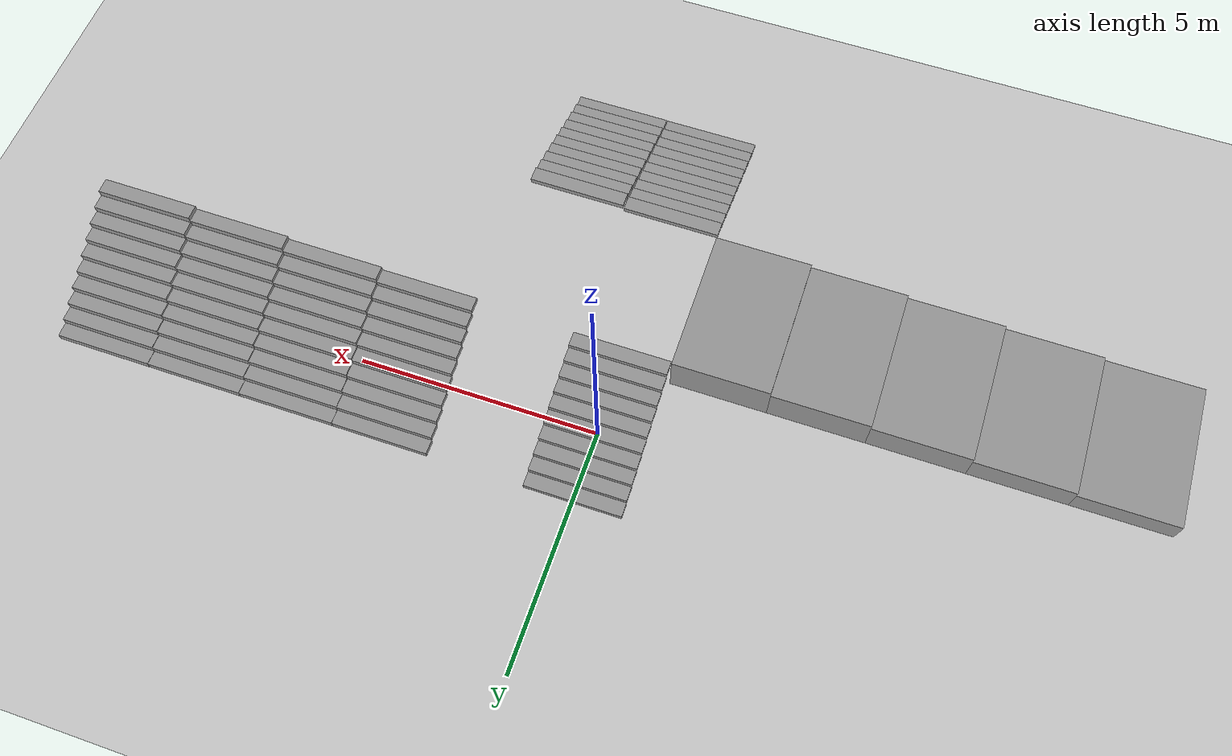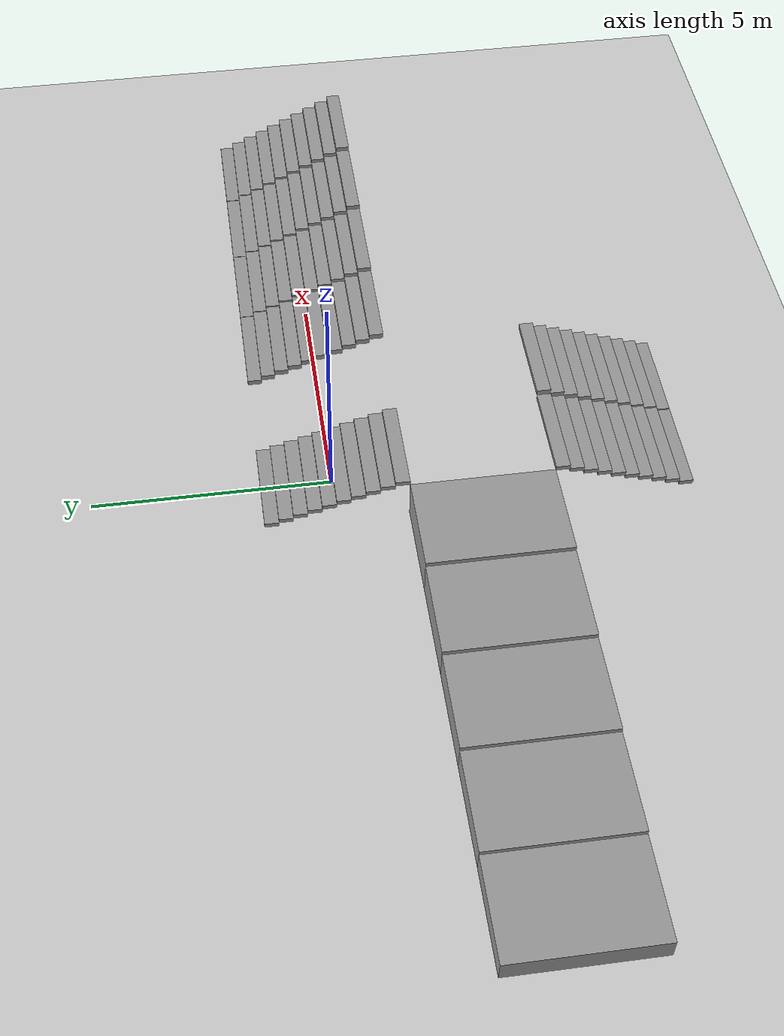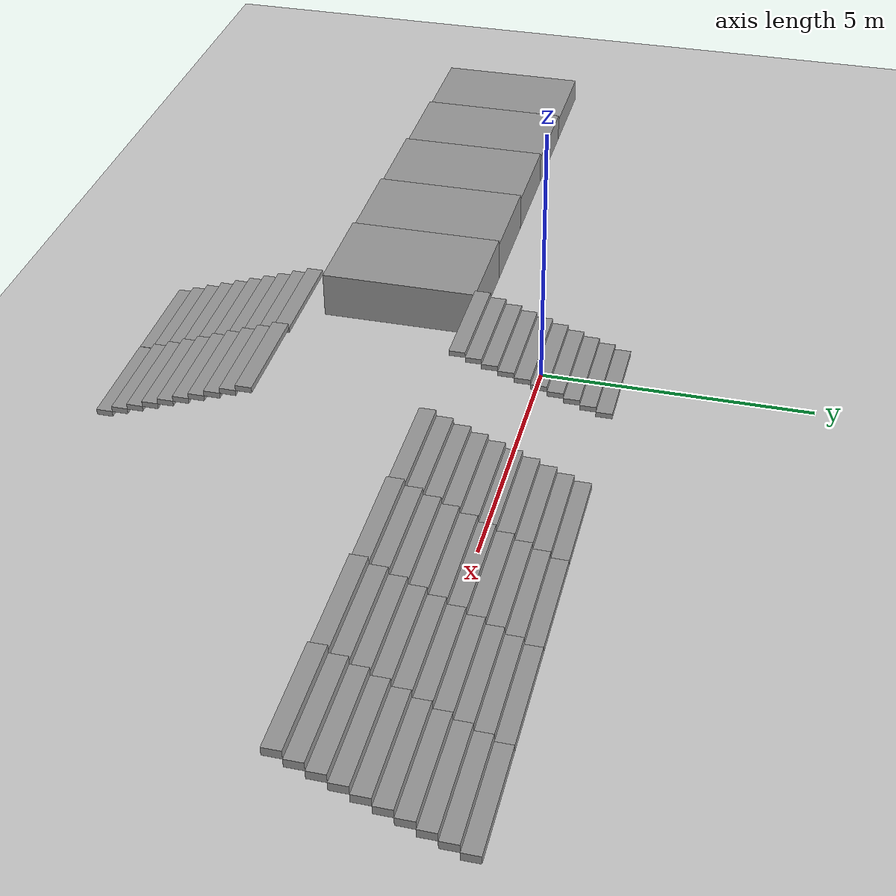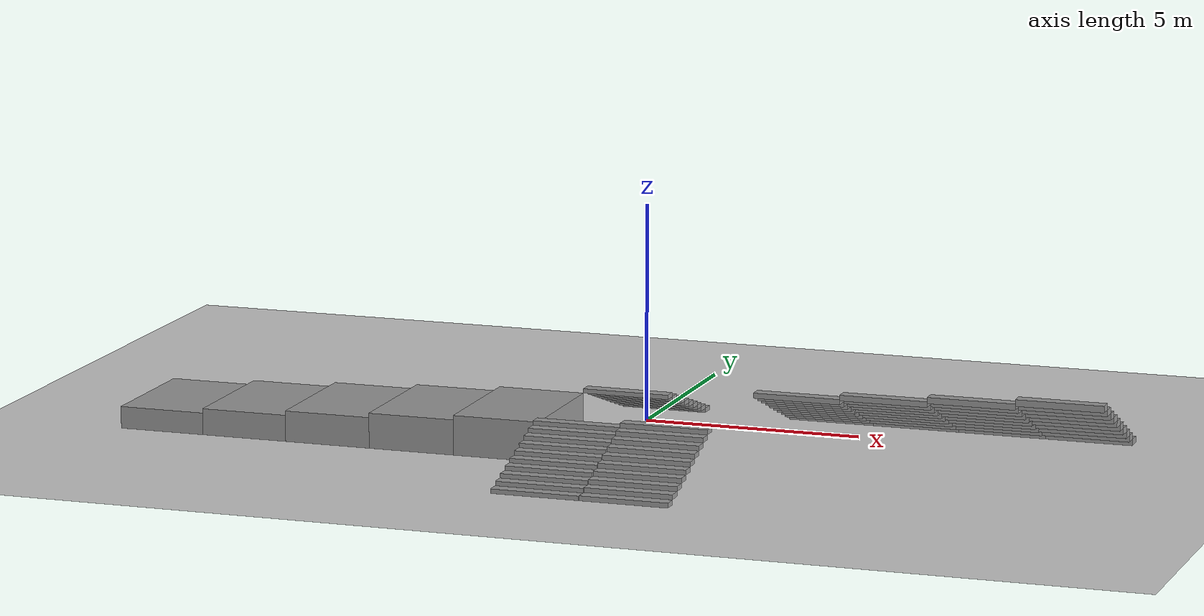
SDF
<sdf version="1.6">
 <world name="default">
  <model name="ground_plane">
   <static>1</static>
   <link name="link">
    <collision name="collision">
     <geometry><plane><normal>0 0 1</normal><size>100 100</size></plane></geometry>
     <surface>
      <contact><collide_bitmask>65535</collide_bitmask></contact>
      <friction><ode><mu>100</mu><mu2>50</mu2></ode></friction>
     </surface>
    </collision>
    <visual name="visual">
     <cast_shadows>0</cast_shadows>
     <geometry><plane><normal>0 0 1</normal><size>100 100</size></plane></geometry>
     <material>
      <script><uri>file://media/materials/scripts/gazebo.material</uri><name>Gazebo/Grey</name></script>
     </material>
    </visual>
   </link>
  </model>
  <model name="StairsWorld3">
   <pose>0 -3 0 0 -0 0</pose>
   <link name="Stairs_1">
    <visual name="Stairs_1_Visual_0">
     <pose>0 4.35 0.05 0 -0 0</pose>
     <geometry><box><size>2 0.3 0.1</size></box></geometry>
     <material>
      <script><uri>file://media/materials/scripts/gazebo.material</uri><name>Gazebo/Grey</name></script>
      <ambient>1 1 1 1</ambient>
     </material>
     <meta><layer>0</layer></meta>
    </visual>
    <collision name="Stairs_1_Collision_0">
     <geometry><box><size>2 0.3 0.1</size></box></geometry>
     <pose>0 4.35 0.05 0 -0 0</pose>
    </collision>
    <visual name="Stairs_1_Visual_1">
     <pose>0 4.05 0.15 0 -0 0</pose>
     <geometry><box><size>2 0.3 0.1</size></box></geometry>
     <material>
      <script><uri>file://media/materials/scripts/gazebo.material</uri><name>Gazebo/Grey</name></script>
      <ambient>1 1 1 1</ambient>
     </material>
     <meta><layer>0</layer></meta>
    </visual>
    <collision name="Stairs_1_Collision_1">
     <geometry><box><size>2 0.3 0.1</size></box></geometry>
     <pose>0 4.05 0.15 0 -0 0</pose>
    </collision>
    <visual name="Stairs_1_Visual_2">
     <pose>0 3.75 0.25 0 -0 0</pose>
     <geometry><box><size>2 0.3 0.1</size></box></geometry>
     <material>
      <script><uri>file://media/materials/scripts/gazebo.material</uri><name>Gazebo/Grey</name></script>
      <ambient>1 1 1 1</ambient>
     </material>
     <meta><layer>0</layer></meta>
    </visual>
    <collision name="Stairs_1_Collision_2">
     <geometry><box><size>2 0.3 0.1</size></box></geometry>
     <pose>0 3.75 0.25 0 -0 0</pose>
    </collision>
    <visual name="Stairs_1_Visual_3">
     <pose>0 3.45 0.35 0 -0 0</pose>
     <geometry><box><size>2 0.3 0.1</size></box></geometry>
     <material>
      <script><uri>file://media/materials/scripts/gazebo.material</uri><name>Gazebo/Grey</name></script>
      <ambient>1 1 1 1</ambient>
     </material>
     <meta><layer>0</layer></meta>
    </visual>
    <collision name="Stairs_1_Collision_3">
     <geometry><box><size>2 0.3 0.1</size></box></geometry>
     <pose>0 3.45 0.35 0 -0 0</pose>
    </collision>
    <visual name="Stairs_1_Visual_4">
     <pose>0 3.15 0.45 0 -0 0</pose>
     <geometry><box><size>2 0.3 0.1</size></box></geometry>
     <material>
      <script><uri>file://media/materials/scripts/gazebo.material</uri><name>Gazebo/Grey</name></script>
      <ambient>1 1 1 1</ambient>
     </material>
     <meta><layer>0</layer></meta>
    </visual>
    <collision name="Stairs_1_Collision_4">
     <geometry><box><size>2 0.3 0.1</size></box></geometry>
     <pose>0 3.15 0.45 0 -0 0</pose>
    </collision>
    <visual name="Stairs_1_Visual_5">
     <pose>0 2.85 0.55 0 -0 0</pose>
     <geometry><box><size>2 0.3 0.1</size></box></geometry>
     <material>
      <script><uri>file://media/materials/scripts/gazebo.material</uri><name>Gazebo/Grey</name></script>
      <ambient>1 1 1 1</ambient>
     </material>
     <meta><layer>0</layer></meta>
    </visual>
    <collision name="Stairs_1_Collision_5">
     <geometry><box><size>2 0.3 0.1</size></box></geometry>
     <pose>0 2.85 0.55 0 -0 0</pose>
    </collision>
    <visual name="Stairs_1_Visual_6">
     <pose>0 2.55 0.65 0 -0 0</pose>
     <geometry><box><size>2 0.3 0.1</size></box></geometry>
     <material>
      <script><uri>file://media/materials/scripts/gazebo.material</uri><name>Gazebo/Grey</name></script>
      <ambient>1 1 1 1</ambient>
     </material>
     <meta><layer>0</layer></meta>
    </visual>
    <collision name="Stairs_1_Collision_6">
     <geometry><box><size>2 0.3 0.1</size></box></geometry>
     <pose>0 2.55 0.65 0 -0 0</pose>
    </collision>
    <visual name="Stairs_1_Visual_7">
     <pose>0 2.25 0.75 0 -0 0</pose>
     <geometry><box><size>2 0.3 0.1</size></box></geometry>
     <material>
      <script><uri>file://media/materials/scripts/gazebo.material</uri><name>Gazebo/Grey</name></script>
      <ambient>1 1 1 1</ambient>
     </material>
     <meta><layer>0</layer></meta>
    </visual>
    <collision name="Stairs_1_Collision_7">
     <geometry><box><size>2 0.3 0.1</size></box></geometry>
     <pose>0 2.25 0.75 0 -0 0</pose>
    </collision>
    <visual name="Stairs_1_Visual_8">
     <pose>0 1.95 0.85 0 -0 0</pose>
     <geometry><box><size>2 0.3 0.1</size></box></geometry>
     <material>
      <script><uri>file://media/materials/scripts/gazebo.material</uri><name>Gazebo/Grey</name></script>
      <ambient>1 1 1 1</ambient>
     </material>
     <meta><layer>0</layer></meta>
    </visual>
    <collision name="Stairs_1_Collision_8">
     <geometry><box><size>2 0.3 0.1</size></box></geometry>
     <pose>0 1.95 0.85 0 -0 0</pose>
    </collision>
    <visual name="Stairs_1_Visual_9">
     <pose>0 1.65 0.95 0 -0 0</pose>
     <geometry><box><size>2 0.3 0.1</size></box></geometry>
     <material>
      <script><uri>file://media/materials/scripts/gazebo.material</uri><name>Gazebo/Grey</name></script>
      <ambient>1 1 1 1</ambient>
     </material>
     <meta><layer>0</layer></meta>
    </visual>
    <collision name="Stairs_1_Collision_9">
     <geometry><box><size>2 0.3 0.1</size></box></geometry>
     <pose>0 1.65 0.95 0 -0 0</pose>
    </collision>
   </link>
   <link name="Stairs_10">
    <visual name="Stairs_10_Visual_0">
     <pose>4 4.35 0.06 0 -0 0</pose>
     <geometry><box><size>2 0.3 0.12</size></box></geometry>
     <material>
      <script><uri>file://media/materials/scripts/gazebo.material</uri><name>Gazebo/Grey</name></script>
      <ambient>1 1 1 1</ambient>
     </material>
     <meta><layer>0</layer></meta>
    </visual>
    <collision name="Stairs_10_Collision_0">
     <geometry><box><size>2 0.3 0.12</size></box></geometry>
     <pose>4 4.35 0.06 0 -0 0</pose>
    </collision>
    <visual name="Stairs_10_Visual_1">
     <pose>4 4.05 0.18 0 -0 0</pose>
     <geometry><box><size>2 0.3 0.12</size></box></geometry>
     <material>
      <script><uri>file://media/materials/scripts/gazebo.material</uri><name>Gazebo/Grey</name></script>
      <ambient>1 1 1 1</ambient>
     </material>
     <meta><layer>0</layer></meta>
    </visual>
    <collision name="Stairs_10_Collision_1">
     <geometry><box><size>2 0.3 0.12</size></box></geometry>
     <pose>4 4.05 0.18 0 -0 0</pose>
    </collision>
    <visual name="Stairs_10_Visual_2">
     <pose>4 3.75 0.3 0 -0 0</pose>
     <geometry><box><size>2 0.3 0.12</size></box></geometry>
     <material>
      <script><uri>file://media/materials/scripts/gazebo.material</uri><name>Gazebo/Grey</name></script>
      <ambient>1 1 1 1</ambient>
     </material>
     <meta><layer>0</layer></meta>
    </visual>
    <collision name="Stairs_10_Collision_2">
     <geometry><box><size>2 0.3 0.12</size></box></geometry>
     <pose>4 3.75 0.3 0 -0 0</pose>
    </collision>
    <visual name="Stairs_10_Visual_3">
     <pose>4 3.45 0.42 0 -0 0</pose>
     <geometry><box><size>2 0.3 0.12</size></box></geometry>
     <material>
      <script><uri>file://media/materials/scripts/gazebo.material</uri><name>Gazebo/Grey</name></script>
      <ambient>1 1 1 1</ambient>
     </material>
     <meta><layer>0</layer></meta>
    </visual>
    <collision name="Stairs_10_Collision_3">
     <geometry><box><size>2 0.3 0.12</size></box></geometry>
     <pose>4 3.45 0.42 0 -0 0</pose>
    </collision>
    <visual name="Stairs_10_Visual_4">
     <pose>4 3.15 0.54 0 -0 0</pose>
     <geometry><box><size>2 0.3 0.12</size></box></geometry>
     <material>
      <script><uri>file://media/materials/scripts/gazebo.material</uri><name>Gazebo/Grey</name></script>
      <ambient>1 1 1 1</ambient>
     </material>
     <meta><layer>0</layer></meta>
    </visual>
    <collision name="Stairs_10_Collision_4">
     <geometry><box><size>2 0.3 0.12</size></box></geometry>
     <pose>4 3.15 0.54 0 -0 0</pose>
    </collision>
    <visual name="Stairs_10_Visual_5">
     <pose>4 2.85 0.66 0 -0 0</pose>
     <geometry><box><size>2 0.3 0.12</size></box></geometry>
     <material>
      <script><uri>file://media/materials/scripts/gazebo.material</uri><name>Gazebo/Grey</name></script>
      <ambient>1 1 1 1</ambient>
     </material>
     <meta><layer>0</layer></meta>
    </visual>
    <collision name="Stairs_10_Collision_5">
     <geometry><box><size>2 0.3 0.12</size></box></geometry>
     <pose>4 2.85 0.66 0 -0 0</pose>
    </collision>
    <visual name="Stairs_10_Visual_6">
     <pose>4 2.55 0.78 0 -0 0</pose>
     <geometry><box><size>2 0.3 0.12</size></box></geometry>
     <material>
      <script><uri>file://media/materials/scripts/gazebo.material</uri><name>Gazebo/Grey</name></script>
      <ambient>1 1 1 1</ambient>
     </material>
     <meta><layer>0</layer></meta>
    </visual>
    <collision name="Stairs_10_Collision_6">
     <geometry><box><size>2 0.3 0.12</size></box></geometry>
     <pose>4 2.55 0.78 0 -0 0</pose>
    </collision>
    <visual name="Stairs_10_Visual_7">
     <pose>4 2.25 0.9 0 -0 0</pose>
     <geometry><box><size>2 0.3 0.12</size></box></geometry>
     <material>
      <script><uri>file://media/materials/scripts/gazebo.material</uri><name>Gazebo/Grey</name></script>
      <ambient>1 1 1 1</ambient>
     </material>
     <meta><layer>0</layer></meta>
    </visual>
    <collision name="Stairs_10_Collision_7">
     <geometry><box><size>2 0.3 0.12</size></box></geometry>
     <pose>4 2.25 0.9 0 -0 0</pose>
    </collision>
    <visual name="Stairs_10_Visual_8">
     <pose>4 1.95 1.02 0 -0 0</pose>
     <geometry><box><size>2 0.3 0.12</size></box></geometry>
     <material>
      <script><uri>file://media/materials/scripts/gazebo.material</uri><name>Gazebo/Grey</name></script>
      <ambient>1 1 1 1</ambient>
     </material>
     <meta><layer>0</layer></meta>
    </visual>
    <collision name="Stairs_10_Collision_8">
     <geometry><box><size>2 0.3 0.12</size></box></geometry>
     <pose>4 1.95 1.02 0 -0 0</pose>
    </collision>
    <visual name="Stairs_10_Visual_9">
     <pose>4 1.65 1.14 0 -0 0</pose>
     <geometry><box><size>2 0.3 0.12</size></box></geometry>
     <material>
      <script><uri>file://media/materials/scripts/gazebo.material</uri><name>Gazebo/Grey</name></script>
      <ambient>1 1 1 1</ambient>
     </material>
     <meta><layer>0</layer></meta>
    </visual>
    <collision name="Stairs_10_Collision_9">
     <geometry><box><size>2 0.3 0.12</size></box></geometry>
     <pose>4 1.65 1.14 0 -0 0</pose>
    </collision>
   </link>
   <link name="Stairs_11">
    <visual name="Stairs_11_Visual_0">
     <pose>6 4.35 0.065 0 -0 0</pose>
     <geometry><box><size>2 0.3 0.13</size></box></geometry>
     <material>
      <script><uri>file://media/materials/scripts/gazebo.material</uri><name>Gazebo/Grey</name></script>
      <ambient>1 1 1 1</ambient>
     </material>
     <meta><layer>0</layer></meta>
    </visual>
    <collision name="Stairs_11_Collision_0">
     <geometry><box><size>2 0.3 0.13</size></box></geometry>
     <pose>6 4.35 0.065 0 -0 0</pose>
    </collision>
    <visual name="Stairs_11_Visual_1">
     <pose>6 4.05 0.195 0 -0 0</pose>
     <geometry><box><size>2 0.3 0.13</size></box></geometry>
     <material>
      <script><uri>file://media/materials/scripts/gazebo.material</uri><name>Gazebo/Grey</name></script>
      <ambient>1 1 1 1</ambient>
     </material>
     <meta><layer>0</layer></meta>
    </visual>
    <collision name="Stairs_11_Collision_1">
     <geometry><box><size>2 0.3 0.13</size></box></geometry>
     <pose>6 4.05 0.195 0 -0 0</pose>
    </collision>
    <visual name="Stairs_11_Visual_2">
     <pose>6 3.75 0.325 0 -0 0</pose>
     <geometry><box><size>2 0.3 0.13</size></box></geometry>
     <material>
      <script><uri>file://media/materials/scripts/gazebo.material</uri><name>Gazebo/Grey</name></script>
      <ambient>1 1 1 1</ambient>
     </material>
     <meta><layer>0</layer></meta>
    </visual>
    <collision name="Stairs_11_Collision_2">
     <geometry><box><size>2 0.3 0.13</size></box></geometry>
     <pose>6 3.75 0.325 0 -0 0</pose>
    </collision>
    <visual name="Stairs_11_Visual_3">
     <pose>6 3.45 0.455 0 -0 0</pose>
     <geometry><box><size>2 0.3 0.13</size></box></geometry>
     <material>
      <script><uri>file://media/materials/scripts/gazebo.material</uri><name>Gazebo/Grey</name></script>
      <ambient>1 1 1 1</ambient>
     </material>
     <meta><layer>0</layer></meta>
    </visual>
    <collision name="Stairs_11_Collision_3">
     <geometry><box><size>2 0.3 0.13</size></box></geometry>
     <pose>6 3.45 0.455 0 -0 0</pose>
    </collision>
    <visual name="Stairs_11_Visual_4">
     <pose>6 3.15 0.585 0 -0 0</pose>
     <geometry><box><size>2 0.3 0.13</size></box></geometry>
     <material>
      <script><uri>file://media/materials/scripts/gazebo.material</uri><name>Gazebo/Grey</name></script>
      <ambient>1 1 1 1</ambient>
     </material>
     <meta><layer>0</layer></meta>
    </visual>
    <collision name="Stairs_11_Collision_4">
     <geometry><box><size>2 0.3 0.13</size></box></geometry>
     <pose>6 3.15 0.585 0 -0 0</pose>
    </collision>
    <visual name="Stairs_11_Visual_5">
     <pose>6 2.85 0.715 0 -0 0</pose>
     <geometry><box><size>2 0.3 0.13</size></box></geometry>
     <material>
      <script><uri>file://media/materials/scripts/gazebo.material</uri><name>Gazebo/Grey</name></script>
      <ambient>1 1 1 1</ambient>
     </material>
     <meta><layer>0</layer></meta>
    </visual>
    <collision name="Stairs_11_Collision_5">
     <geometry><box><size>2 0.3 0.13</size></box></geometry>
     <pose>6 2.85 0.715 0 -0 0</pose>
    </collision>
    <visual name="Stairs_11_Visual_6">
     <pose>6 2.55 0.845 0 -0 0</pose>
     <geometry><box><size>2 0.3 0.13</size></box></geometry>
     <material>
      <script><uri>file://media/materials/scripts/gazebo.material</uri><name>Gazebo/Grey</name></script>
      <ambient>1 1 1 1</ambient>
     </material>
     <meta><layer>0</layer></meta>
    </visual>
    <collision name="Stairs_11_Collision_6">
     <geometry><box><size>2 0.3 0.13</size></box></geometry>
     <pose>6 2.55 0.845 0 -0 0</pose>
    </collision>
    <visual name="Stairs_11_Visual_7">
     <pose>6 2.25 0.975 0 -0 0</pose>
     <geometry><box><size>2 0.3 0.13</size></box></geometry>
     <material>
      <script><uri>file://media/materials/scripts/gazebo.material</uri><name>Gazebo/Grey</name></script>
      <ambient>1 1 1 1</ambient>
     </material>
     <meta><layer>0</layer></meta>
    </visual>
    <collision name="Stairs_11_Collision_7">
     <geometry><box><size>2 0.3 0.13</size></box></geometry>
     <pose>6 2.25 0.975 0 -0 0</pose>
    </collision>
    <visual name="Stairs_11_Visual_8">
     <pose>6 1.95 1.105 0 -0 0</pose>
     <geometry><box><size>2 0.3 0.13</size></box></geometry>
     <material>
      <script><uri>file://media/materials/scripts/gazebo.material</uri><name>Gazebo/Grey</name></script>
      <ambient>1 1 1 1</ambient>
     </material>
     <meta><layer>0</layer></meta>
    </visual>
    <collision name="Stairs_11_Collision_8">
     <geometry><box><size>2 0.3 0.13</size></box></geometry>
     <pose>6 1.95 1.105 0 -0 0</pose>
    </collision>
    <visual name="Stairs_11_Visual_9">
     <pose>6 1.65 1.235 0 -0 0</pose>
     <geometry><box><size>2 0.3 0.13</size></box></geometry>
     <material>
      <script><uri>file://media/materials/scripts/gazebo.material</uri><name>Gazebo/Grey</name></script>
      <ambient>1 1 1 1</ambient>
     </material>
     <meta><layer>0</layer></meta>
    </visual>
    <collision name="Stairs_11_Collision_9">
     <geometry><box><size>2 0.3 0.13</size></box></geometry>
     <pose>6 1.65 1.235 0 -0 0</pose>
    </collision>
   </link>
   <link name="Stairs_12">
    <visual name="Stairs_12_Visual_0">
     <pose>8 4.35 0.07 0 -0 0</pose>
     <geometry><box><size>2 0.3 0.14</size></box></geometry>
     <material>
      <script><uri>file://media/materials/scripts/gazebo.material</uri><name>Gazebo/Grey</name></script>
      <ambient>1 1 1 1</ambient>
     </material>
     <meta><layer>0</layer></meta>
    </visual>
    <collision name="Stairs_12_Collision_0">
     <geometry><box><size>2 0.3 0.14</size></box></geometry>
     <pose>8 4.35 0.07 0 -0 0</pose>
    </collision>
    <visual name="Stairs_12_Visual_1">
     <pose>8 4.05 0.21 0 -0 0</pose>
     <geometry><box><size>2 0.3 0.14</size></box></geometry>
     <material>
      <script><uri>file://media/materials/scripts/gazebo.material</uri><name>Gazebo/Grey</name></script>
      <ambient>1 1 1 1</ambient>
     </material>
     <meta><layer>0</layer></meta>
    </visual>
    <collision name="Stairs_12_Collision_1">
     <geometry><box><size>2 0.3 0.14</size></box></geometry>
     <pose>8 4.05 0.21 0 -0 0</pose>
    </collision>
    <visual name="Stairs_12_Visual_2">
     <pose>8 3.75 0.35 0 -0 0</pose>
     <geometry><box><size>2 0.3 0.14</size></box></geometry>
     <material>
      <script><uri>file://media/materials/scripts/gazebo.material</uri><name>Gazebo/Grey</name></script>
      <ambient>1 1 1 1</ambient>
     </material>
     <meta><layer>0</layer></meta>
    </visual>
    <collision name="Stairs_12_Collision_2">
     <geometry><box><size>2 0.3 0.14</size></box></geometry>
     <pose>8 3.75 0.35 0 -0 0</pose>
    </collision>
    <visual name="Stairs_12_Visual_3">
     <pose>8 3.45 0.49 0 -0 0</pose>
     <geometry><box><size>2 0.3 0.14</size></box></geometry>
     <material>
      <script><uri>file://media/materials/scripts/gazebo.material</uri><name>Gazebo/Grey</name></script>
      <ambient>1 1 1 1</ambient>
     </material>
     <meta><layer>0</layer></meta>
    </visual>
    <collision name="Stairs_12_Collision_3">
     <geometry><box><size>2 0.3 0.14</size></box></geometry>
     <pose>8 3.45 0.49 0 -0 0</pose>
    </collision>
    <visual name="Stairs_12_Visual_4">
     <pose>8 3.15 0.63 0 -0 0</pose>
     <geometry><box><size>2 0.3 0.14</size></box></geometry>
     <material>
      <script><uri>file://media/materials/scripts/gazebo.material</uri><name>Gazebo/Grey</name></script>
      <ambient>1 1 1 1</ambient>
     </material>
     <meta><layer>0</layer></meta>
    </visual>
    <collision name="Stairs_12_Collision_4">
     <geometry><box><size>2 0.3 0.14</size></box></geometry>
     <pose>8 3.15 0.63 0 -0 0</pose>
    </collision>
    <visual name="Stairs_12_Visual_5">
     <pose>8 2.85 0.77 0 -0 0</pose>
     <geometry><box><size>2 0.3 0.14</size></box></geometry>
     <material>
      <script><uri>file://media/materials/scripts/gazebo.material</uri><name>Gazebo/Grey</name></script>
      <ambient>1 1 1 1</ambient>
     </material>
     <meta><layer>0</layer></meta>
    </visual>
    <collision name="Stairs_12_Collision_5">
     <geometry><box><size>2 0.3 0.14</size></box></geometry>
     <pose>8 2.85 0.77 0 -0 0</pose>
    </collision>
    <visual name="Stairs_12_Visual_6">
     <pose>8 2.55 0.91 0 -0 0</pose>
     <geometry><box><size>2 0.3 0.14</size></box></geometry>
     <material>
      <script><uri>file://media/materials/scripts/gazebo.material</uri><name>Gazebo/Grey</name></script>
      <ambient>1 1 1 1</ambient>
     </material>
     <meta><layer>0</layer></meta>
    </visual>
    <collision name="Stairs_12_Collision_6">
     <geometry><box><size>2 0.3 0.14</size></box></geometry>
     <pose>8 2.55 0.91 0 -0 0</pose>
    </collision>
    <visual name="Stairs_12_Visual_7">
     <pose>8 2.25 1.05 0 -0 0</pose>
     <geometry><box><size>2 0.3 0.14</size></box></geometry>
     <material>
      <script><uri>file://media/materials/scripts/gazebo.material</uri><name>Gazebo/Grey</name></script>
      <ambient>1 1 1 1</ambient>
     </material>
     <meta><layer>0</layer></meta>
    </visual>
    <collision name="Stairs_12_Collision_7">
     <geometry><box><size>2 0.3 0.14</size></box></geometry>
     <pose>8 2.25 1.05 0 -0 0</pose>
    </collision>
    <visual name="Stairs_12_Visual_8">
     <pose>8 1.95 1.19 0 -0 0</pose>
     <geometry><box><size>2 0.3 0.14</size></box></geometry>
     <material>
      <script><uri>file://media/materials/scripts/gazebo.material</uri><name>Gazebo/Grey</name></script>
      <ambient>1 1 1 1</ambient>
     </material>
     <meta><layer>0</layer></meta>
    </visual>
    <collision name="Stairs_12_Collision_8">
     <geometry><box><size>2 0.3 0.14</size></box></geometry>
     <pose>8 1.95 1.19 0 -0 0</pose>
    </collision>
    <visual name="Stairs_12_Visual_9">
     <pose>8 1.65 1.33 0 -0 0</pose>
     <geometry><box><size>2 0.3 0.14</size></box></geometry>
     <material>
      <script><uri>file://media/materials/scripts/gazebo.material</uri><name>Gazebo/Grey</name></script>
      <ambient>1 1 1 1</ambient>
     </material>
     <meta><layer>0</layer></meta>
    </visual>
    <collision name="Stairs_12_Collision_9">
     <geometry><box><size>2 0.3 0.14</size></box></geometry>
     <pose>8 1.65 1.33 0 -0 0</pose>
    </collision>
   </link>
   <link name="Stairs_13">
    <visual name="Stairs_13_Visual_0">
     <pose>10 4.35 0.075 0 -0 0</pose>
     <geometry><box><size>2 0.3 0.15</size></box></geometry>
     <material>
      <script><uri>file://media/materials/scripts/gazebo.material</uri><name>Gazebo/Grey</name></script>
      <ambient>1 1 1 1</ambient>
     </material>
     <meta><layer>0</layer></meta>
    </visual>
    <collision name="Stairs_13_Collision_0">
     <geometry><box><size>2 0.3 0.15</size></box></geometry>
     <pose>10 4.35 0.075 0 -0 0</pose>
    </collision>
    <visual name="Stairs_13_Visual_1">
     <pose>10 4.05 0.225 0 -0 0</pose>
     <geometry><box><size>2 0.3 0.15</size></box></geometry>
     <material>
      <script><uri>file://media/materials/scripts/gazebo.material</uri><name>Gazebo/Grey</name></script>
      <ambient>1 1 1 1</ambient>
     </material>
     <meta><layer>0</layer></meta>
    </visual>
    <collision name="Stairs_13_Collision_1">
     <geometry><box><size>2 0.3 0.15</size></box></geometry>
     <pose>10 4.05 0.225 0 -0 0</pose>
    </collision>
    <visual name="Stairs_13_Visual_2">
     <pose>10 3.75 0.375 0 -0 0</pose>
     <geometry><box><size>2 0.3 0.15</size></box></geometry>
     <material>
      <script><uri>file://media/materials/scripts/gazebo.material</uri><name>Gazebo/Grey</name></script>
      <ambient>1 1 1 1</ambient>
     </material>
     <meta><layer>0</layer></meta>
    </visual>
    <collision name="Stairs_13_Collision_2">
     <geometry><box><size>2 0.3 0.15</size></box></geometry>
     <pose>10 3.75 0.375 0 -0 0</pose>
    </collision>
    <visual name="Stairs_13_Visual_3">
     <pose>10 3.45 0.525 0 -0 0</pose>
     <geometry><box><size>2 0.3 0.15</size></box></geometry>
     <material>
      <script><uri>file://media/materials/scripts/gazebo.material</uri><name>Gazebo/Grey</name></script>
      <ambient>1 1 1 1</ambient>
     </material>
     <meta><layer>0</layer></meta>
    </visual>
    <collision name="Stairs_13_Collision_3">
     <geometry><box><size>2 0.3 0.15</size></box></geometry>
     <pose>10 3.45 0.525 0 -0 0</pose>
    </collision>
    <visual name="Stairs_13_Visual_4">
     <pose>10 3.15 0.675 0 -0 0</pose>
     <geometry><box><size>2 0.3 0.15</size></box></geometry>
     <material>
      <script><uri>file://media/materials/scripts/gazebo.material</uri><name>Gazebo/Grey</name></script>
      <ambient>1 1 1 1</ambient>
     </material>
     <meta><layer>0</layer></meta>
    </visual>
    <collision name="Stairs_13_Collision_4">
     <geometry><box><size>2 0.3 0.15</size></box></geometry>
     <pose>10 3.15 0.675 0 -0 0</pose>
    </collision>
    <visual name="Stairs_13_Visual_5">
     <pose>10 2.85 0.825 0 -0 0</pose>
     <geometry><box><size>2 0.3 0.15</size></box></geometry>
     <material>
      <script><uri>file://media/materials/scripts/gazebo.material</uri><name>Gazebo/Grey</name></script>
      <ambient>1 1 1 1</ambient>
     </material>
     <meta><layer>0</layer></meta>
    </visual>
    <collision name="Stairs_13_Collision_5">
     <geometry><box><size>2 0.3 0.15</size></box></geometry>
     <pose>10 2.85 0.825 0 -0 0</pose>
    </collision>
    <visual name="Stairs_13_Visual_6">
     <pose>10 2.55 0.975 0 -0 0</pose>
     <geometry><box><size>2 0.3 0.15</size></box></geometry>
     <material>
      <script><uri>file://media/materials/scripts/gazebo.material</uri><name>Gazebo/Grey</name></script>
      <ambient>1 1 1 1</ambient>
     </material>
     <meta><layer>0</layer></meta>
    </visual>
    <collision name="Stairs_13_Collision_6">
     <geometry><box><size>2 0.3 0.15</size></box></geometry>
     <pose>10 2.55 0.975 0 -0 0</pose>
    </collision>
    <visual name="Stairs_13_Visual_7">
     <pose>10 2.25 1.125 0 -0 0</pose>
     <geometry><box><size>2 0.3 0.15</size></box></geometry>
     <material>
      <script><uri>file://media/materials/scripts/gazebo.material</uri><name>Gazebo/Grey</name></script>
      <ambient>1 1 1 1</ambient>
     </material>
     <meta><layer>0</layer></meta>
    </visual>
    <collision name="Stairs_13_Collision_7">
     <geometry><box><size>2 0.3 0.15</size></box></geometry>
     <pose>10 2.25 1.125 0 -0 0</pose>
    </collision>
    <visual name="Stairs_13_Visual_8">
     <pose>10 1.95 1.275 0 -0 0</pose>
     <geometry><box><size>2 0.3 0.15</size></box></geometry>
     <material>
      <script><uri>file://media/materials/scripts/gazebo.material</uri><name>Gazebo/Grey</name></script>
      <ambient>1 1 1 1</ambient>
     </material>
     <meta><layer>0</layer></meta>
    </visual>
    <collision name="Stairs_13_Collision_8">
     <geometry><box><size>2 0.3 0.15</size></box></geometry>
     <pose>10 1.95 1.275 0 -0 0</pose>
    </collision>
    <visual name="Stairs_13_Visual_9">
     <pose>10 1.65 1.425 0 -0 0</pose>
     <geometry><box><size>2 0.3 0.15</size></box></geometry>
     <material>
      <script><uri>file://media/materials/scripts/gazebo.material</uri><name>Gazebo/Grey</name></script>
      <ambient>1 1 1 1</ambient>
     </material>
     <meta><layer>0</layer></meta>
    </visual>
    <collision name="Stairs_13_Collision_9">
     <geometry><box><size>2 0.3 0.15</size></box></geometry>
     <pose>10 1.65 1.425 0 -0 0</pose>
    </collision>
   </link>
   <link name="Stairs_18">
    <visual name="Stairs_18_Visual_0">
     <pose>-0.020114 -4.35 0.05 0 0 -3.14159</pose>
     <geometry><box><size>2 0.3 0.1</size></box></geometry>
     <material>
      <script><uri>file://media/materials/scripts/gazebo.material</uri><name>Gazebo/Grey</name></script>
      <ambient>1 1 1 1</ambient>
     </material>
     <meta><layer>0</layer></meta>
    </visual>
    <collision name="Stairs_18_Collision_0">
     <geometry><box><size>2 0.3 0.1</size></box></geometry>
     <pose>-0.020114 -4.35 0.05 0 0 -3.14159</pose>
    </collision>
    <visual name="Stairs_18_Visual_1">
     <pose>-0.020114 -4.05 0.15 0 0 -3.14159</pose>
     <geometry><box><size>2 0.3 0.1</size></box></geometry>
     <material>
      <script><uri>file://media/materials/scripts/gazebo.material</uri><name>Gazebo/Grey</name></script>
      <ambient>1 1 1 1</ambient>
     </material>
     <meta><layer>0</layer></meta>
    </visual>
    <collision name="Stairs_18_Collision_1">
     <geometry><box><size>2 0.3 0.1</size></box></geometry>
     <pose>-0.020114 -4.05 0.15 0 0 -3.14159</pose>
    </collision>
    <visual name="Stairs_18_Visual_2">
     <pose>-0.020114 -3.75 0.25 0 0 -3.14159</pose>
     <geometry><box><size>2 0.3 0.1</size></box></geometry>
     <material>
      <script><uri>file://media/materials/scripts/gazebo.material</uri><name>Gazebo/Grey</name></script>
      <ambient>1 1 1 1</ambient>
     </material>
     <meta><layer>0</layer></meta>
    </visual>
    <collision name="Stairs_18_Collision_2">
     <geometry><box><size>2 0.3 0.1</size></box></geometry>
     <pose>-0.020114 -3.75 0.25 0 0 -3.14159</pose>
    </collision>
    <visual name="Stairs_18_Visual_3">
     <pose>-0.020114 -3.45 0.35 0 0 -3.14159</pose>
     <geometry><box><size>2 0.3 0.1</size></box></geometry>
     <material>
      <script><uri>file://media/materials/scripts/gazebo.material</uri><name>Gazebo/Grey</name></script>
      <ambient>1 1 1 1</ambient>
     </material>
     <meta><layer>0</layer></meta>
    </visual>
    <collision name="Stairs_18_Collision_3">
     <geometry><box><size>2 0.3 0.1</size></box></geometry>
     <pose>-0.020114 -3.45 0.35 0 0 -3.14159</pose>
    </collision>
    <visual name="Stairs_18_Visual_4">
     <pose>-0.020114 -3.15 0.45 0 0 -3.14159</pose>
     <geometry><box><size>2 0.3 0.1</size></box></geometry>
     <material>
      <script><uri>file://media/materials/scripts/gazebo.material</uri><name>Gazebo/Grey</name></script>
      <ambient>1 1 1 1</ambient>
     </material>
     <meta><layer>0</layer></meta>
    </visual>
    <collision name="Stairs_18_Collision_4">
     <geometry><box><size>2 0.3 0.1</size></box></geometry>
     <pose>-0.020114 -3.15 0.45 0 0 -3.14159</pose>
    </collision>
    <visual name="Stairs_18_Visual_5">
     <pose>-0.020114 -2.85 0.55 0 0 -3.14159</pose>
     <geometry><box><size>2 0.3 0.1</size></box></geometry>
     <material>
      <script><uri>file://media/materials/scripts/gazebo.material</uri><name>Gazebo/Grey</name></script>
      <ambient>1 1 1 1</ambient>
     </material>
     <meta><layer>0</layer></meta>
    </visual>
    <collision name="Stairs_18_Collision_5">
     <geometry><box><size>2 0.3 0.1</size></box></geometry>
     <pose>-0.020114 -2.85 0.55 0 0 -3.14159</pose>
    </collision>
    <visual name="Stairs_18_Visual_6">
     <pose>-0.020114 -2.55 0.65 0 0 -3.14159</pose>
     <geometry><box><size>2 0.3 0.1</size></box></geometry>
     <material>
      <script><uri>file://media/materials/scripts/gazebo.material</uri><name>Gazebo/Grey</name></script>
      <ambient>1 1 1 1</ambient>
     </material>
     <meta><layer>0</layer></meta>
    </visual>
    <collision name="Stairs_18_Collision_6">
     <geometry><box><size>2 0.3 0.1</size></box></geometry>
     <pose>-0.020114 -2.55 0.65 0 0 -3.14159</pose>
    </collision>
    <visual name="Stairs_18_Visual_7">
     <pose>-0.020114 -2.25 0.75 0 0 -3.14159</pose>
     <geometry><box><size>2 0.3 0.1</size></box></geometry>
     <material>
      <script><uri>file://media/materials/scripts/gazebo.material</uri><name>Gazebo/Grey</name></script>
      <ambient>1 1 1 1</ambient>
     </material>
     <meta><layer>0</layer></meta>
    </visual>
    <collision name="Stairs_18_Collision_7">
     <geometry><box><size>2 0.3 0.1</size></box></geometry>
     <pose>-0.020114 -2.25 0.75 0 0 -3.14159</pose>
    </collision>
    <visual name="Stairs_18_Visual_8">
     <pose>-0.020114 -1.95 0.85 0 0 -3.14159</pose>
     <geometry><box><size>2 0.3 0.1</size></box></geometry>
     <material>
      <script><uri>file://media/materials/scripts/gazebo.material</uri><name>Gazebo/Grey</name></script>
      <ambient>1 1 1 1</ambient>
     </material>
     <meta><layer>0</layer></meta>
    </visual>
    <collision name="Stairs_18_Collision_8">
     <geometry><box><size>2 0.3 0.1</size></box></geometry>
     <pose>-0.020114 -1.95 0.85 0 0 -3.14159</pose>
    </collision>
    <visual name="Stairs_18_Visual_9">
     <pose>-0.020114 -1.65 0.95 0 0 -3.14159</pose>
     <geometry><box><size>2 0.3 0.1</size></box></geometry>
     <material>
      <script><uri>file://media/materials/scripts/gazebo.material</uri><name>Gazebo/Grey</name></script>
      <ambient>1 1 1 1</ambient>
     </material>
     <meta><layer>0</layer></meta>
    </visual>
    <collision name="Stairs_18_Collision_9">
     <geometry><box><size>2 0.3 0.1</size></box></geometry>
     <pose>-0.020114 -1.65 0.95 0 0 -3.14159</pose>
    </collision>
   </link>
   <link name="Stairs_19">
    <visual name="Stairs_19_Visual_0">
     <pose>2 -4.35 0.055 0 0 -3.14159</pose>
     <geometry><box><size>2 0.3 0.11</size></box></geometry>
     <material>
      <script><uri>file://media/materials/scripts/gazebo.material</uri><name>Gazebo/Grey</name></script>
      <ambient>1 1 1 1</ambient>
     </material>
     <meta><layer>0</layer></meta>
    </visual>
    <collision name="Stairs_19_Collision_0">
     <geometry><box><size>2 0.3 0.11</size></box></geometry>
     <pose>2 -4.35 0.055 0 0 -3.14159</pose>
    </collision>
    <visual name="Stairs_19_Visual_1">
     <pose>2 -4.05 0.165 0 0 -3.14159</pose>
     <geometry><box><size>2 0.3 0.11</size></box></geometry>
     <material>
      <script><uri>file://media/materials/scripts/gazebo.material</uri><name>Gazebo/Grey</name></script>
      <ambient>1 1 1 1</ambient>
     </material>
     <meta><layer>0</layer></meta>
    </visual>
    <collision name="Stairs_19_Collision_1">
     <geometry><box><size>2 0.3 0.11</size></box></geometry>
     <pose>2 -4.05 0.165 0 0 -3.14159</pose>
    </collision>
    <visual name="Stairs_19_Visual_2">
     <pose>2 -3.75 0.275 0 0 -3.14159</pose>
     <geometry><box><size>2 0.3 0.11</size></box></geometry>
     <material>
      <script><uri>file://media/materials/scripts/gazebo.material</uri><name>Gazebo/Grey</name></script>
      <ambient>1 1 1 1</ambient>
     </material>
     <meta><layer>0</layer></meta>
    </visual>
    <collision name="Stairs_19_Collision_2">
     <geometry><box><size>2 0.3 0.11</size></box></geometry>
     <pose>2 -3.75 0.275 0 0 -3.14159</pose>
    </collision>
    <visual name="Stairs_19_Visual_3">
     <pose>2 -3.45 0.385 0 0 -3.14159</pose>
     <geometry><box><size>2 0.3 0.11</size></box></geometry>
     <material>
      <script><uri>file://media/materials/scripts/gazebo.material</uri><name>Gazebo/Grey</name></script>
      <ambient>1 1 1 1</ambient>
     </material>
     <meta><layer>0</layer></meta>
    </visual>
    <collision name="Stairs_19_Collision_3">
     <geometry><box><size>2 0.3 0.11</size></box></geometry>
     <pose>2 -3.45 0.385 0 0 -3.14159</pose>
    </collision>
    <visual name="Stairs_19_Visual_4">
     <pose>2 -3.15 0.495 0 0 -3.14159</pose>
     <geometry><box><size>2 0.3 0.11</size></box></geometry>
     <material>
      <script><uri>file://media/materials/scripts/gazebo.material</uri><name>Gazebo/Grey</name></script>
      <ambient>1 1 1 1</ambient>
     </material>
     <meta><layer>0</layer></meta>
    </visual>
    <collision name="Stairs_19_Collision_4">
     <geometry><box><size>2 0.3 0.11</size></box></geometry>
     <pose>2 -3.15 0.495 0 0 -3.14159</pose>
    </collision>
    <visual name="Stairs_19_Visual_5">
     <pose>2 -2.85 0.605 0 0 -3.14159</pose>
     <geometry><box><size>2 0.3 0.11</size></box></geometry>
     <material>
      <script><uri>file://media/materials/scripts/gazebo.material</uri><name>Gazebo/Grey</name></script>
      <ambient>1 1 1 1</ambient>
     </material>
     <meta><layer>0</layer></meta>
    </visual>
    <collision name="Stairs_19_Collision_5">
     <geometry><box><size>2 0.3 0.11</size></box></geometry>
     <pose>2 -2.85 0.605 0 0 -3.14159</pose>
    </collision>
    <visual name="Stairs_19_Visual_6">
     <pose>2 -2.55 0.715 0 0 -3.14159</pose>
     <geometry><box><size>2 0.3 0.11</size></box></geometry>
     <material>
      <script><uri>file://media/materials/scripts/gazebo.material</uri><name>Gazebo/Grey</name></script>
      <ambient>1 1 1 1</ambient>
     </material>
     <meta><layer>0</layer></meta>
    </visual>
    <collision name="Stairs_19_Collision_6">
     <geometry><box><size>2 0.3 0.11</size></box></geometry>
     <pose>2 -2.55 0.715 0 0 -3.14159</pose>
    </collision>
    <visual name="Stairs_19_Visual_7">
     <pose>2 -2.25 0.825 0 0 -3.14159</pose>
     <geometry><box><size>2 0.3 0.11</size></box></geometry>
     <material>
      <script><uri>file://media/materials/scripts/gazebo.material</uri><name>Gazebo/Grey</name></script>
      <ambient>1 1 1 1</ambient>
     </material>
     <meta><layer>0</layer></meta>
    </visual>
    <collision name="Stairs_19_Collision_7">
     <geometry><box><size>2 0.3 0.11</size></box></geometry>
     <pose>2 -2.25 0.825 0 0 -3.14159</pose>
    </collision>
    <visual name="Stairs_19_Visual_8">
     <pose>2 -1.95 0.935 0 0 -3.14159</pose>
     <geometry><box><size>2 0.3 0.11</size></box></geometry>
     <material>
      <script><uri>file://media/materials/scripts/gazebo.material</uri><name>Gazebo/Grey</name></script>
      <ambient>1 1 1 1</ambient>
     </material>
     <meta><layer>0</layer></meta>
    </visual>
    <collision name="Stairs_19_Collision_8">
     <geometry><box><size>2 0.3 0.11</size></box></geometry>
     <pose>2 -1.95 0.935 0 0 -3.14159</pose>
    </collision>
    <visual name="Stairs_19_Visual_9">
     <pose>2 -1.65 1.045 0 0 -3.14159</pose>
     <geometry><box><size>2 0.3 0.11</size></box></geometry>
     <material>
      <script><uri>file://media/materials/scripts/gazebo.material</uri><name>Gazebo/Grey</name></script>
      <ambient>1 1 1 1</ambient>
     </material>
     <meta><layer>0</layer></meta>
    </visual>
    <collision name="Stairs_19_Collision_9">
     <geometry><box><size>2 0.3 0.11</size></box></geometry>
     <pose>2 -1.65 1.045 0 0 -3.14159</pose>
    </collision>
   </link>
   <link name="Wall_19">
    <collision name="Wall_19_Collision">
     <geometry><box><size>3 2 0.9</size></box></geometry>
     <pose>0 0 0.45 0 -0 0</pose>
    </collision>
    <visual name="Wall_19_Visual">
     <pose>0 0 0.45 0 -0 0</pose>
     <geometry><box><size>3 2 0.9</size></box></geometry>
     <material>
      <script><uri>file://media/materials/scripts/gazebo.material</uri><name>Gazebo/Grey</name></script>
      <ambient>1 1 1 1</ambient>
     </material>
     <meta><layer>0</layer></meta>
    </visual>
    <pose>-2 0 0 0 -0 -1.5708</pose>
   </link>
   <link name="Wall_21">
    <collision name="Wall_21_Collision">
     <geometry><box><size>3 2 0.8</size></box></geometry>
     <pose>0 0 0.4 0 -0 0</pose>
    </collision>
    <visual name="Wall_21_Visual">
     <pose>0 0 0.4 0 -0 0</pose>
     <geometry><box><size>3 2 0.8</size></box></geometry>
     <material>
      <script><uri>file://media/materials/scripts/gazebo.material</uri><name>Gazebo/Grey</name></script>
      <ambient>1 1 1 1</ambient>
     </material>
     <meta><layer>0</layer></meta>
    </visual>
    <pose>-4 0 0 0 -0 -1.5708</pose>
   </link>
   <link name="Wall_23">
    <collision name="Wall_23_Collision">
     <geometry><box><size>3 2 0.7</size></box></geometry>
     <pose>0 0 0.35 0 -0 0</pose>
    </collision>
    <visual name="Wall_23_Visual">
     <pose>0 0 0.35 0 -0 0</pose>
     <geometry><box><size>3 2 0.7</size></box></geometry>
     <material>
      <script><uri>file://media/materials/scripts/gazebo.material</uri><name>Gazebo/Grey</name></script>
      <ambient>1 1 1 1</ambient>
     </material>
     <meta><layer>0</layer></meta>
    </visual>
    <pose>-6 0 0 0 -0 -1.5708</pose>
   </link>
   <link name="Wall_25">
    <collision name="Wall_25_Collision">
     <geometry><box><size>3 2 0.6</size></box></geometry>
     <pose>0 0 0.3 0 -0 0</pose>
    </collision>
    <visual name="Wall_25_Visual">
     <pose>0 0 0.3 0 -0 0</pose>
     <geometry><box><size>3 2 0.6</size></box></geometry>
     <material>
      <script><uri>file://media/materials/scripts/gazebo.material</uri><name>Gazebo/Grey</name></script>
      <ambient>1 1 1 1</ambient>
     </material>
     <meta><layer>0</layer></meta>
    </visual>
    <pose>-8 0 0 0 -0 -1.5708</pose>
   </link>
   <link name="Wall_27">
    <collision name="Wall_27_Collision">
     <geometry><box><size>3 2 0.5</size></box></geometry>
     <pose>0 0 0.25 0 -0 0</pose>
    </collision>
    <visual name="Wall_27_Visual">
     <pose>0 0 0.25 0 -0 0</pose>
     <geometry><box><size>3 2 0.5</size></box></geometry>
     <material>
      <script><uri>file://media/materials/scripts/gazebo.material</uri><name>Gazebo/Grey</name></script>
      <ambient>1 1 1 1</ambient>
     </material>
     <meta><layer>0</layer></meta>
    </visual>
    <pose>-10 0 0 0 -0 -1.5708</pose>
   </link>
   <static>1</static>
  </model>
 </world>
</sdf>
